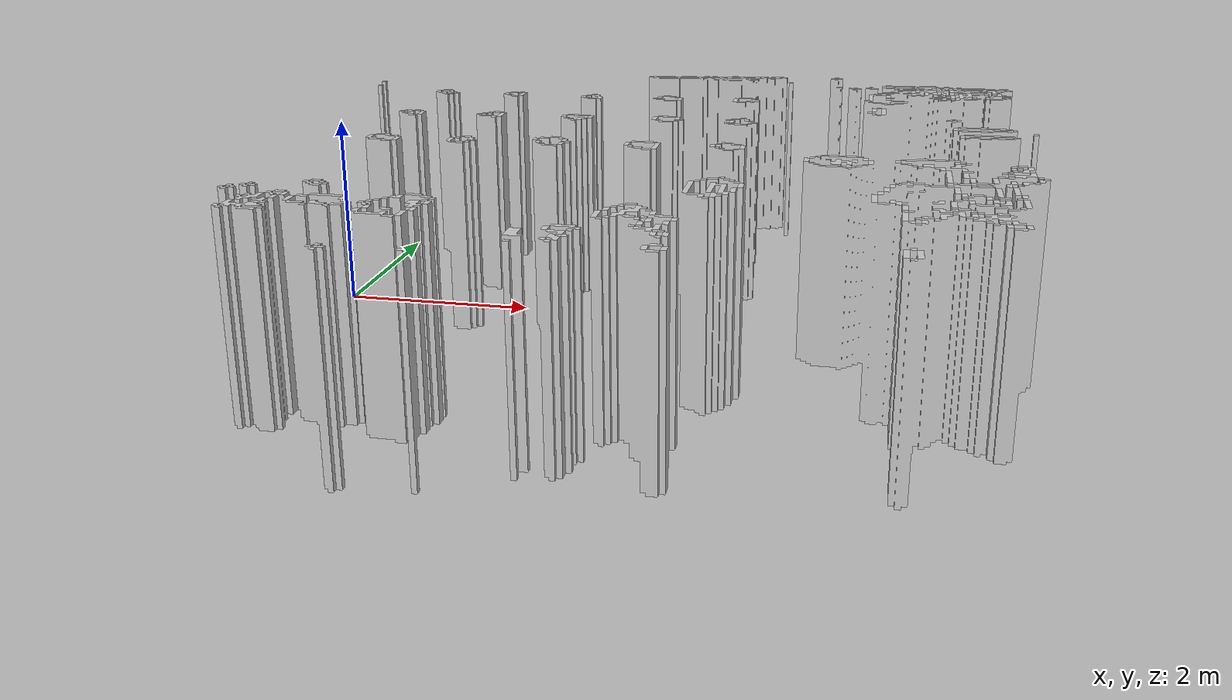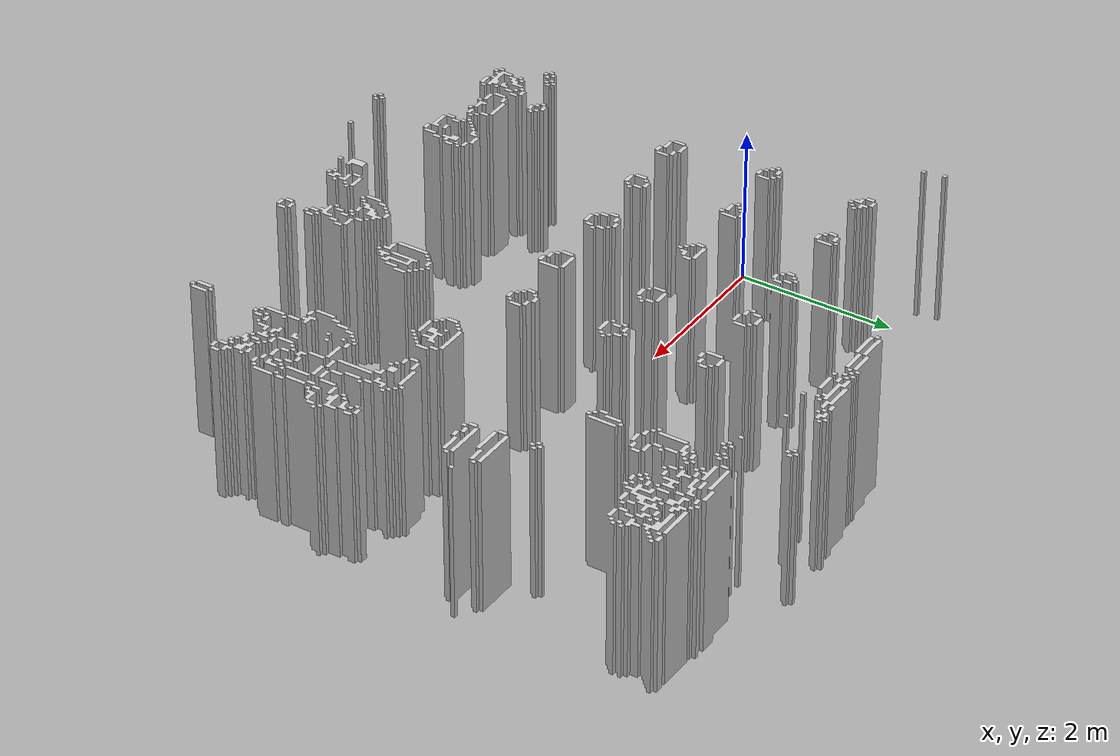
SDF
<?xml version="1.0"?>
<sdf version="1.6">
  <model name="map">
    <static>true</static>
    <link name="link">
      <collision name="collision">
        <geometry>
          <mesh>
            <uri>model://map/meshes/indoor_abc_lab3.stl</uri>
          </mesh>
        </geometry>
      </collision>
      <visual name="visual">
        <geometry>
          <mesh>
            <uri>model://map/meshes/indoor_abc_lab3.stl</uri>
          </mesh>
        </geometry>
        <material>
          <ambient>0.5 0.5 0.5 1</ambient>
          <diffuse>0.8 0.8 0.8 1</diffuse>
          <specular>0.1 0.1 0.1 1</specular>
        </material>
      </visual>
    </link>
  </model>
</sdf>
